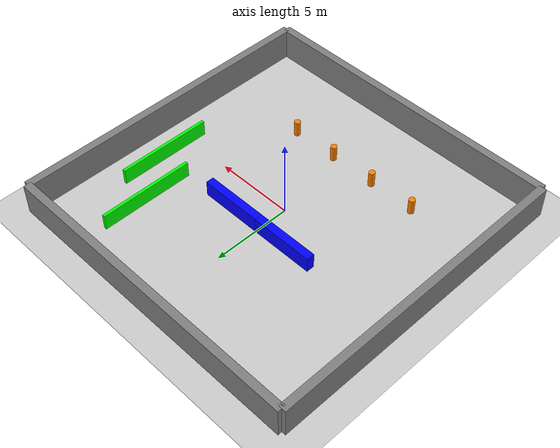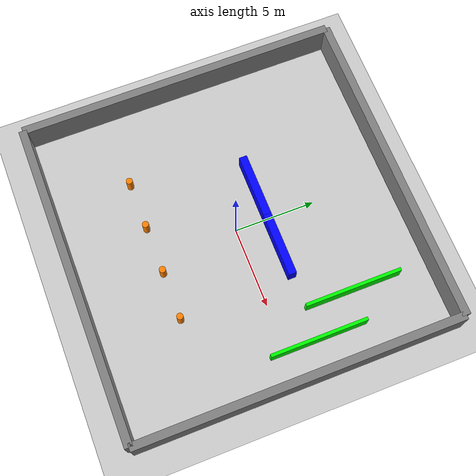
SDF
<?xml version="1.0"?>
<sdf version="1.6">
  <world name="obstacle_course">

    <!-- Physics -->
    <physics name="1ms" type="ignored">
      <max_step_size>0.001</max_step_size>
      <real_time_factor>1.0</real_time_factor>
    </physics>

    <!-- Plugins -->
    <plugin
      filename="ignition-gazebo-physics-system"
      name="ignition::gazebo::systems::Physics">
    </plugin>
    <plugin
      filename="ignition-gazebo-user-commands-system"
      name="ignition::gazebo::systems::UserCommands">
    </plugin>
    <plugin
      filename="ignition-gazebo-scene-broadcaster-system"
      name="ignition::gazebo::systems::SceneBroadcaster">
    </plugin>
    <plugin
      filename="ignition-gazebo-sensors-system"
      name="ignition::gazebo::systems::Sensors">
      <render_engine>ogre2</render_engine>
    </plugin>

    <!-- Lighting -->
    <light type="directional" name="sun">
      <cast_shadows>true</cast_shadows>
      <pose>0 0 10 0 0 0</pose>
      <diffuse>0.8 0.8 0.8 1</diffuse>
      <specular>0.2 0.2 0.2 1</specular>
      <attenuation>
        <range>1000</range>
        <constant>0.9</constant>
        <linear>0.01</linear>
        <quadratic>0.001</quadratic>
      </attenuation>
      <direction>-0.5 0.1 -0.9</direction>
    </light>

    <!-- Ground Plane -->
    <model name="ground_plane">
      <static>true</static>
      <link name="link">
        <collision name="collision">
          <geometry>
            <plane>
              <normal>0 0 1</normal>
              <size>100 100</size>
            </plane>
          </geometry>
        </collision>
        <visual name="visual">
          <geometry>
            <plane>
              <normal>0 0 1</normal>
              <size>100 100</size>
            </plane>
          </geometry>
          <material>
            <ambient>0.8 0.8 0.8 1</ambient>
            <diffuse>0.8 0.8 0.8 1</diffuse>
            <specular>0.8 0.8 0.8 1</specular>
          </material>
        </visual>
      </link>
    </model>

    <!-- Obstacle Course Walls -->

    <!-- Outer Walls -->
    <model name="wall_north">
      <pose>0 10 1 0 0 0</pose>
      <static>true</static>
      <link name="link">
        <collision name="collision">
          <geometry>
            <box>
              <size>20 0.5 2</size>
            </box>
          </geometry>
        </collision>
        <visual name="visual">
          <geometry>
            <box>
              <size>20 0.5 2</size>
            </box>
          </geometry>
          <material>
            <ambient>0.5 0.5 0.5 1</ambient>
            <diffuse>0.5 0.5 0.5 1</diffuse>
          </material>
        </visual>
      </link>
    </model>

    <model name="wall_south">
      <pose>0 -10 1 0 0 0</pose>
      <static>true</static>
      <link name="link">
        <collision name="collision">
          <geometry>
            <box>
              <size>20 0.5 2</size>
            </box>
          </geometry>
        </collision>
        <visual name="visual">
          <geometry>
            <box>
              <size>20 0.5 2</size>
            </box>
          </geometry>
          <material>
            <ambient>0.5 0.5 0.5 1</ambient>
            <diffuse>0.5 0.5 0.5 1</diffuse>
          </material>
        </visual>
      </link>
    </model>

    <model name="wall_east">
      <pose>10 0 1 0 0 0</pose>
      <static>true</static>
      <link name="link">
        <collision name="collision">
          <geometry>
            <box>
              <size>0.5 20 2</size>
            </box>
          </geometry>
        </collision>
        <visual name="visual">
          <geometry>
            <box>
              <size>0.5 20 2</size>
            </box>
          </geometry>
          <material>
            <ambient>0.5 0.5 0.5 1</ambient>
            <diffuse>0.5 0.5 0.5 1</diffuse>
          </material>
        </visual>
      </link>
    </model>

    <model name="wall_west">
      <pose>-10 0 1 0 0 0</pose>
      <static>true</static>
      <link name="link">
        <collision name="collision">
          <geometry>
            <box>
              <size>0.5 20 2</size>
            </box>
          </geometry>
        </collision>
        <visual name="visual">
          <geometry>
            <box>
              <size>0.5 20 2</size>
            </box>
          </geometry>
          <material>
            <ambient>0.5 0.5 0.5 1</ambient>
            <diffuse>0.5 0.5 0.5 1</diffuse>
          </material>
        </visual>
      </link>
    </model>

    <!-- Internal Obstacles -->

    <!-- Slalom Cones (Cylinders) -->
    <model name="cone_1">
      <pose>-5 -5 0.5 0 0 0</pose>
      <static>true</static>
      <link name="link">
        <collision name="collision">
          <geometry>
            <cylinder>
              <radius>0.2</radius>
              <length>1</length>
            </cylinder>
          </geometry>
        </collision>
        <visual name="visual">
          <geometry>
            <cylinder>
              <radius>0.2</radius>
              <length>1</length>
            </cylinder>
          </geometry>
          <material>
            <ambient>1 0.5 0 1</ambient>
            <diffuse>1 0.5 0 1</diffuse>
          </material>
        </visual>
      </link>
    </model>

    <model name="cone_2">
      <pose>-2 -5 0.5 0 0 0</pose>
      <static>true</static>
      <link name="link">
        <collision name="collision">
          <geometry>
            <cylinder>
              <radius>0.2</radius>
              <length>1</length>
            </cylinder>
          </geometry>
        </collision>
        <visual name="visual">
          <geometry>
            <cylinder>
              <radius>0.2</radius>
              <length>1</length>
            </cylinder>
          </geometry>
          <material>
            <ambient>1 0.5 0 1</ambient>
            <diffuse>1 0.5 0 1</diffuse>
          </material>
        </visual>
      </link>
    </model>

    <model name="cone_3">
      <pose>1 -5 0.5 0 0 0</pose>
      <static>true</static>
      <link name="link">
        <collision name="collision">
          <geometry>
            <cylinder>
              <radius>0.2</radius>
              <length>1</length>
            </cylinder>
          </geometry>
        </collision>
        <visual name="visual">
          <geometry>
            <cylinder>
              <radius>0.2</radius>
              <length>1</length>
            </cylinder>
          </geometry>
          <material>
            <ambient>1 0.5 0 1</ambient>
            <diffuse>1 0.5 0 1</diffuse>
          </material>
        </visual>
      </link>
    </model>

    <model name="cone_4">
      <pose>4 -5 0.5 0 0 0</pose>
      <static>true</static>
      <link name="link">
        <collision name="collision">
          <geometry>
            <cylinder>
              <radius>0.2</radius>
              <length>1</length>
            </cylinder>
          </geometry>
        </collision>
        <visual name="visual">
          <geometry>
            <cylinder>
              <radius>0.2</radius>
              <length>1</length>
            </cylinder>
          </geometry>
          <material>
            <ambient>1 0.5 0 1</ambient>
            <diffuse>1 0.5 0 1</diffuse>
          </material>
        </visual>
      </link>
    </model>

    <!-- Narrow Passage -->
    <model name="passage_left">
      <pose>-2 2 0.5 0 0 0</pose>
      <static>true</static>
      <link name="link">
        <collision name="collision">
          <geometry>
            <box>
              <size>4 0.5 1</size>
            </box>
          </geometry>
        </collision>
        <visual name="visual">
          <geometry>
            <box>
              <size>4 0.5 1</size>
            </box>
          </geometry>
          <material>
            <ambient>0 0 1 1</ambient>
            <diffuse>0 0 1 1</diffuse>
          </material>
        </visual>
      </link>
    </model>

    <model name="passage_right">
      <pose>2 2 0.5 0 0 0</pose>
      <static>true</static>
      <link name="link">
        <collision name="collision">
          <geometry>
            <box>
              <size>4 0.5 1</size>
            </box>
          </geometry>
        </collision>
        <visual name="visual">
          <geometry>
            <box>
              <size>4 0.5 1</size>
            </box>
          </geometry>
          <material>
            <ambient>0 0 1 1</ambient>
            <diffuse>0 0 1 1</diffuse>
          </material>
        </visual>
      </link>
    </model>

    <!-- Central Block removed - was blocking robot spawn point -->

    <!-- Maze Section -->
    <model name="maze_wall_1">
      <pose>6 5 0.5 0 0 0</pose>
      <static>true</static>
      <link name="link">
        <collision name="collision">
          <geometry>
            <box>
              <size>0.2 6 1</size>
            </box>
          </geometry>
        </collision>
        <visual name="visual">
          <geometry>
            <box>
              <size>0.2 6 1</size>
            </box>
          </geometry>
          <material>
            <ambient>0 1 0 1</ambient>
            <diffuse>0 1 0 1</diffuse>
          </material>
        </visual>
      </link>
    </model>

    <model name="maze_wall_2">
      <pose>8 2 0.5 0 0 0</pose>
      <static>true</static>
      <link name="link">
        <collision name="collision">
          <geometry>
            <box>
              <size>0.2 6 1</size>
            </box>
          </geometry>
        </collision>
        <visual name="visual">
          <geometry>
            <box>
              <size>0.2 6 1</size>
            </box>
          </geometry>
          <material>
            <ambient>0 1 0 1</ambient>
            <diffuse>0 1 0 1</diffuse>
          </material>
        </visual>
      </link>
    </model>

  </world>
</sdf>
